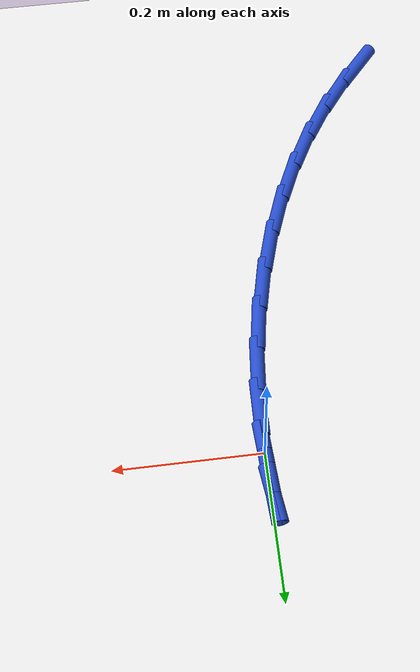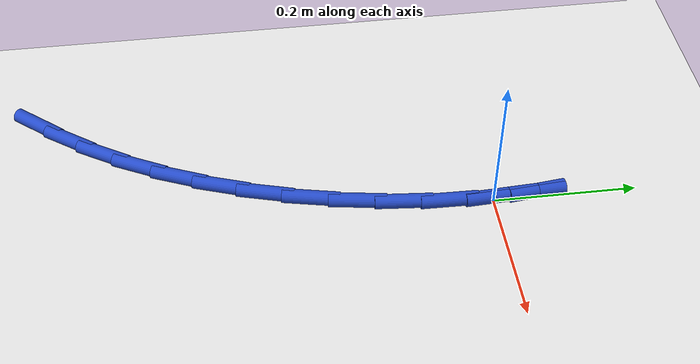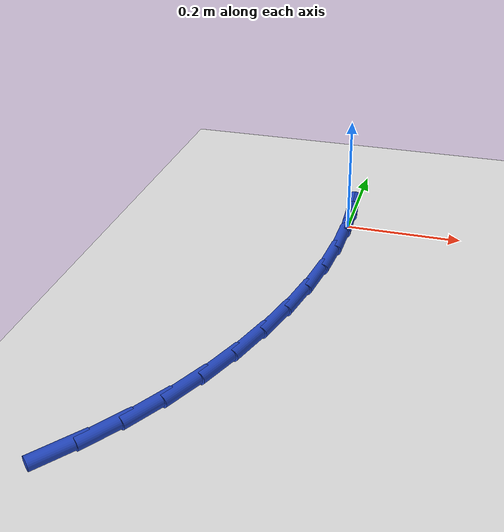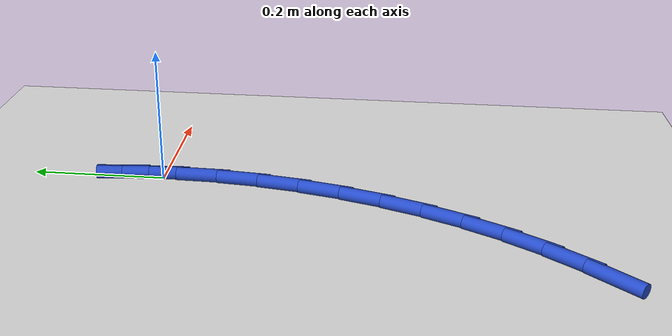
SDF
<sdf version="1.6">
 <world name="default">
  <model name="ground_plane">
   <static>1</static>
   <link name="link">
    <collision name="collision">
     <geometry><plane><normal>0 0 1</normal><size>100 100</size></plane></geometry>
     <surface><friction><ode><mu>100</mu><mu2>50</mu2></ode></friction></surface>
    </collision>
    <visual name="visual">
     <cast_shadows>0</cast_shadows>
     <geometry><plane><normal>0 0 1</normal><size>100 100</size></plane></geometry>
     <material>
      <script><uri>file://media/materials/scripts/gazebo.material</uri><name>Gazebo/WhiteGlow</name></script>
     </material>
    </visual>
   </link>
  </model>
  <model name="line">
   <link name="link_0">
    <pose>1.0408340855860843e-17 8.326672684688674e-17 0.01 0 1.57 -1.5191163804976562</pose>
    <collision name="collision">
     <geometry><cylinder><radius>0.01</radius><length>0.08</length></cylinder></geometry>
    </collision>
    <visual name="visual">
     <material>
      <script><name>Gazebo/Blue</name><uri>file://media/materials/scripts/gazebo.material</uri></script>
     </material>
     <geometry><cylinder><radius>0.01</radius><length>0.08</length></cylinder></geometry>
    </visual>
   </link>
   <link name="link_1">
    <pose>-0.003131244564827005 0.06053521012007689 0.01 0 1.57 -1.449998999819407</pose>
    <collision name="collision">
     <geometry><cylinder><radius>0.01</radius><length>0.08</length></cylinder></geometry>
    </collision>
    <visual name="visual">
     <material>
      <script><name>Gazebo/Blue</name><uri>file://media/materials/scripts/gazebo.material</uri></script>
     </material>
     <geometry><cylinder><radius>0.01</radius><length>0.08</length></cylinder></geometry>
    </visual>
   </link>
   <link name="link_109">
    <pose>-0.22552750161810586 -0.620725179644875 0.01 0 1.57 0.8657253602859026</pose>
    <collision name="collision">
     <geometry><cylinder><radius>0.01</radius><length>0.08</length></cylinder></geometry>
    </collision>
    <visual name="visual">
     <material>
      <script><name>Gazebo/Blue</name><uri>file://media/materials/scripts/gazebo.material</uri></script>
     </material>
     <geometry><cylinder><radius>0.01</radius><length>0.08</length></cylinder></geometry>
    </visual>
   </link>
   <link name="link_110">
    <pose>-0.1877236213399202 -0.5763019859277673 0.01 0 1.57 0.9345757236225671</pose>
    <collision name="collision">
     <geometry><cylinder><radius>0.01</radius><length>0.08</length></cylinder></geometry>
    </collision>
    <visual name="visual">
     <material>
      <script><name>Gazebo/Blue</name><uri>file://media/materials/scripts/gazebo.material</uri></script>
     </material>
     <geometry><cylinder><radius>0.01</radius><length>0.08</length></cylinder></geometry>
    </visual>
   </link>
   <link name="link_111">
    <pose>-0.15298840450320111 -0.5292789927825508 0.01 0 1.57 1.0111388783137631</pose>
    <collision name="collision">
     <geometry><cylinder><radius>0.01</radius><length>0.08</length></cylinder></geometry>
    </collision>
    <visual name="visual">
     <material>
      <script><name>Gazebo/Blue</name><uri>file://media/materials/scripts/gazebo.material</uri></script>
     </material>
     <geometry><cylinder><radius>0.01</radius><length>0.08</length></cylinder></geometry>
    </visual>
   </link>
   <link name="link_112">
    <pose>-0.12144596091405375 -0.4789297011951976 0.01 0 1.57 1.0879726103608423</pose>
    <collision name="collision">
     <geometry><cylinder><radius>0.01</radius><length>0.08</length></cylinder></geometry>
    </collision>
    <visual name="visual">
     <material>
      <script><name>Gazebo/Blue</name><uri>file://media/materials/scripts/gazebo.material</uri></script>
     </material>
     <geometry><cylinder><radius>0.01</radius><length>0.08</length></cylinder></geometry>
    </visual>
   </link>
   <link name="link_113">
    <pose>-0.0932249929417295 -0.4250939724621478 0.01 0 1.57 1.1594177646647854</pose>
    <collision name="collision">
     <geometry><cylinder><radius>0.01</radius><length>0.08</length></cylinder></geometry>
    </collision>
    <visual name="visual">
     <material>
      <script><name>Gazebo/Blue</name><uri>file://media/materials/scripts/gazebo.material</uri></script>
     </material>
     <geometry><cylinder><radius>0.01</radius><length>0.08</length></cylinder></geometry>
    </visual>
   </link>
   <link name="link_114">
    <pose>-0.06846001874176161 -0.36832887751224913 0.01 0 1.57 1.2267212592275778</pose>
    <collision name="collision">
     <geometry><cylinder><radius>0.01</radius><length>0.08</length></cylinder></geometry>
    </collision>
    <visual name="visual">
     <material>
      <script><name>Gazebo/Blue</name><uri>file://media/materials/scripts/gazebo.material</uri></script>
     </material>
     <geometry><cylinder><radius>0.01</radius><length>0.08</length></cylinder></geometry>
    </visual>
   </link>
   <link name="link_115">
    <pose>-0.04728593040769557 -0.3092376017515894 0.01 0 1.57 1.291390211134613</pose>
    <collision name="collision">
     <geometry><cylinder><radius>0.01</radius><length>0.08</length></cylinder></geometry>
    </collision>
    <visual name="visual">
     <material>
      <script><name>Gazebo/Blue</name><uri>file://media/materials/scripts/gazebo.material</uri></script>
     </material>
     <geometry><cylinder><radius>0.01</radius><length>0.08</length></cylinder></geometry>
    </visual>
   </link>
   <link name="link_116">
    <pose>-0.0298376200330777 -0.248423330586259 0.01 0 1.57 1.3548291328740487</pose>
    <collision name="collision">
     <geometry><cylinder><radius>0.01</radius><length>0.08</length></cylinder></geometry>
    </collision>
    <visual name="visual">
     <material>
      <script><name>Gazebo/Blue</name><uri>file://media/materials/scripts/gazebo.material</uri></script>
     </material>
     <geometry><cylinder><radius>0.01</radius><length>0.08</length></cylinder></geometry>
    </visual>
   </link>
   <link name="link_117">
    <pose>-0.016249979711453442 -0.18648924942234602 0.01 0 1.57 1.4183929485503863</pose>
    <collision name="collision">
     <geometry><cylinder><radius>0.01</radius><length>0.08</length></cylinder></geometry>
    </collision>
    <visual name="visual">
     <material>
      <script><name>Gazebo/Blue</name><uri>file://media/materials/scripts/gazebo.material</uri></script>
     </material>
     <geometry><cylinder><radius>0.01</radius><length>0.08</length></cylinder></geometry>
    </visual>
   </link>
   <link name="link_118">
    <pose>-0.00665790153636857 -0.12403854366593947 0.01 0 1.57 1.483442848438725</pose>
    <collision name="collision">
     <geometry><cylinder><radius>0.01</radius><length>0.08</length></cylinder></geometry>
    </collision>
    <visual name="visual">
     <material>
      <script><name>Gazebo/Blue</name><uri>file://media/materials/scripts/gazebo.material</uri></script>
     </material>
     <geometry><cylinder><radius>0.01</radius><length>0.08</length></cylinder></geometry>
    </visual>
   </link>
   <link name="link_119">
    <pose>-0.0011962776013687733 -0.061674398723127195 0.01 0 1.57 1.5514020945918408</pose>
    <collision name="collision">
     <geometry><cylinder><radius>0.01</radius><length>0.08</length></cylinder></geometry>
    </collision>
    <visual name="visual">
     <material>
      <script><name>Gazebo/Blue</name><uri>file://media/materials/scripts/gazebo.material</uri></script>
     </material>
     <geometry><cylinder><radius>0.01</radius><length>0.08</length></cylinder></geometry>
    </visual>
   </link>
   <link name="link_120">
    <pose>2.7755575615628914e-17 1.3877787807814457e-16 0.01 0 1.57 -1.51778405246304</pose>
    <collision name="collision">
     <geometry><cylinder><radius>0.01</radius><length>0.08</length></cylinder></geometry>
    </collision>
    <visual name="visual">
     <material>
      <script><name>Gazebo/Blue</name><uri>file://media/materials/scripts/gazebo.material</uri></script>
     </material>
     <geometry><cylinder><radius>0.01</radius><length>0.08</length></cylinder></geometry>
    </visual>
   </link>
   <link name="link_121">
    <pose>-0.0032039608258078132 0.06038146709735462 0.01 0 1.57 -1.5177840524630402</pose>
    <collision name="collision">
     <geometry><cylinder><radius>0.01</radius><length>0.08</length></cylinder></geometry>
    </collision>
    <visual name="visual">
     <material>
      <script><name>Gazebo/Blue</name><uri>file://media/materials/scripts/gazebo.material</uri></script>
     </material>
     <geometry><cylinder><radius>0.01</radius><length>0.08</length></cylinder></geometry>
    </visual>
   </link>
  </model>
 </world>
</sdf>
